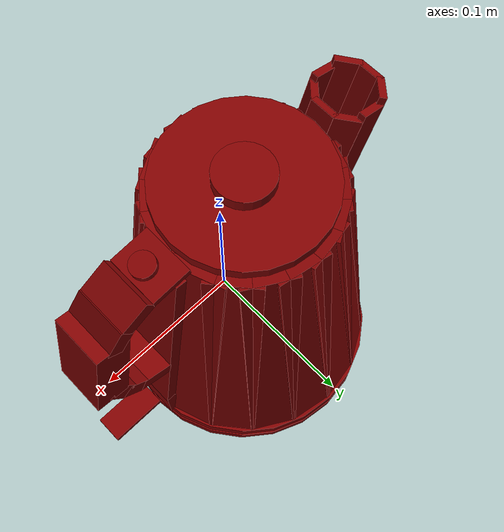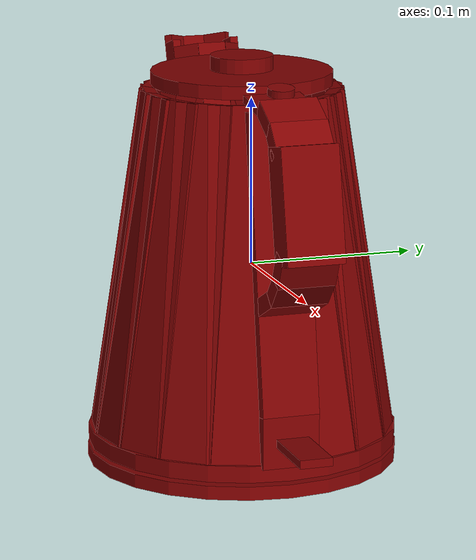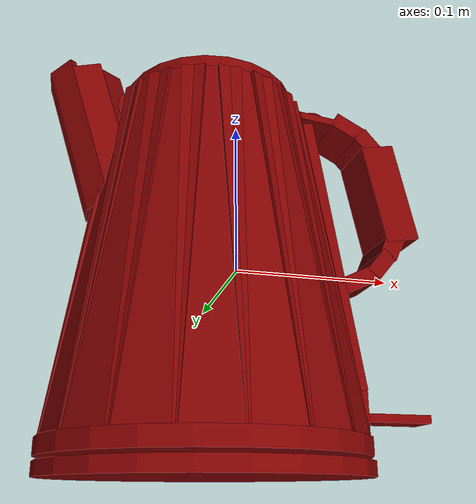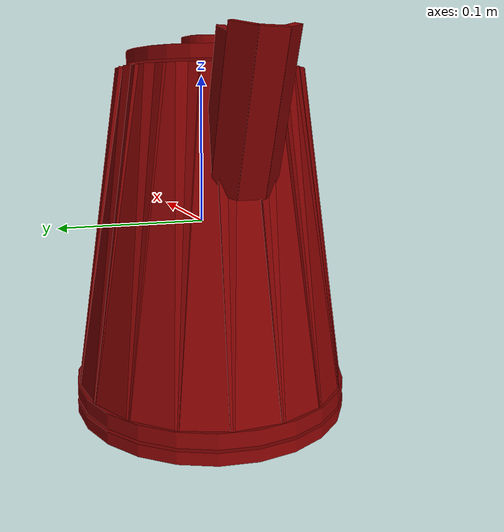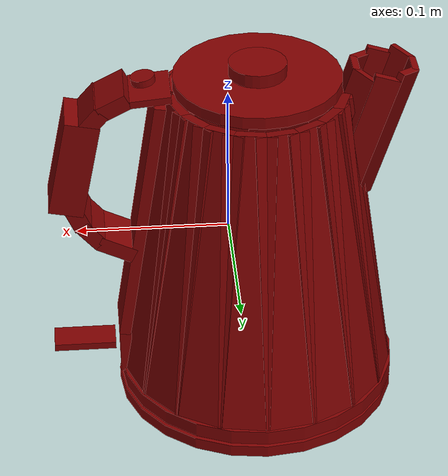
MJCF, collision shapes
<?xml version='1.0' encoding='UTF-8'?>
<mujoco model="model">
  <option timestep="0.002" gravity="0.0 0.0 -9.81"/>
  <compiler angle="radian"/>
  <asset>
    <mesh file="visuals/button_lid.obj" name="button_lid_vis"/>
    <mesh file="visuals/Body001.obj" name="Body001_vis"/>
    <mesh file="visuals/kettle_main.obj" name="kettle_main_vis"/>
    <mesh file="visuals/lid.obj" name="lid_vis"/>
    <mesh file="visuals/switch.obj" name="switch_vis"/>
    <texture file="visuals/T_BC001.png" name="Body001_material" type="2d"/>
    <material name="Body001_material" rgba="1 1 1 1.0" texture="Body001_material" shininess="0.5" specular="0.3103448502657381"/>
    <texture file="visuals/T_BC001.png" name="kettle_main_material" type="2d"/>
    <material name="kettle_main_material" rgba="1 1 1 1.0" texture="kettle_main_material" shininess="0.5" specular="0.3103448502657381"/>
    <texture file="visuals/T_BC001.png" name="button_lid_material" type="2d"/>
    <material name="button_lid_material" rgba="1 1 1 1.0" texture="button_lid_material" shininess="0.5" specular="0.3103448502657381"/>
    <texture file="visuals/T_BC001.png" name="lid_material" type="2d"/>
    <material name="lid_material" rgba="1 1 1 1.0" texture="lid_material" shininess="0.5" specular="0.3103448502657381"/>
    <texture file="visuals/T_BC001.png" name="switch_material" type="2d"/>
    <material name="switch_material" rgba="1 1 1 1.0" texture="switch_material" shininess="0.5" specular="0.3103448502657381"/>
  </asset>
  <default>
    <default class="visual">
      <geom conaffinity="0" contype="0" group="1" type="mesh"/>
    </default>
    <default class="collision">
      <geom group="0" rgba="0.5 0 0 0.5" density="1.0" solref="0.004 1" solimp="0.998 0.998 0.001"/>
    </default>
    <default class="spawn">
      <geom group="0" rgba="1 1 1 0.5" contype="0" conaffinity="0"/>
      <site group="0" rgba="1 1 1 0.5"/>
    </default>
    <default class="region">
      <geom group="1" conaffinity="0" contype="0" rgba="0 1 0 0" mass="0"/>
    </default>
  </default>
  <worldbody>
    <body>
      <body name="object">
        <geom mesh="Body001_vis" type="mesh" solimp="0.998 0.998 0.001" solref="0.001 1" friction="0.95 0.3 0.1" class="visual" material="Body001_material"/>
        <geom type="cylinder" pos="-0.01862647 0.00000000 -0.11908298" size="0.0935683622956276 0.004105851054191589" quat="1.0 0.0 0.0 0.0" class="collision"/>
        <body name="kettle_main">
          <geom mesh="kettle_main_vis" type="mesh" solimp="0.998 0.998 0.001" solref="0.001 1" friction="0.95 0.3 0.1" class="visual" material="kettle_main_material"/>
          <geom type="cylinder" pos="-0.01901763 0.00020971 -0.10780872" size="0.09313647449016571 0.005019483156502247" quat="1.0 0.0 0.0 0.0" class="collision"/>
          <geom type="box" pos="0.05766624 0.00000000 0.01329787" size="0.00381870218552649 0.01719263382256031 0.08845608681440353" quat="0.9970765113830566 5.866154734176035e-16 -0.07640993595123291 -1.0266349548260223e-08" class="collision"/>
          <geom type="box" pos="0.04732430 -0.02415994 -0.00054653" size="0.0038187019526958466 0.01719263195991516 0.10453208535909653" quat="0.9819286465644836 -0.013268446549773216 -0.0752490982413292 -0.1731405258178711" class="collision"/>
          <geom type="box" pos="0.03498848 -0.04538055 -0.00054653" size="0.00381870218552649 0.01719263382256031 0.10453208535909653" quat="0.9369454383850098 -0.026133734732866287 -0.07180185616016388 -0.3410201966762543" class="collision"/>
          <geom type="box" pos="0.01613872 -0.06110230 -0.00054653" size="0.00381870218552649 0.01719263195991516 0.10453208535909653" quat="0.8634935617446899 -0.038204967975616455 -0.06617294996976852 -0.4985382556915283" class="collision"/>
          <geom type="box" pos="-0.00695140 -0.06942891 -0.00054653" size="0.003818702418357134 0.01719263382256031 0.10453209280967712" quat="0.7638048529624939 -0.0491153784096241 -0.05853341519832611 -0.6409084796905518" class="collision"/>
          <geom type="box" pos="-0.03149690 -0.06935610 -0.00054653" size="0.003818702418357134 0.01719263382256031 0.10453208535909653" quat="0.640908420085907 -0.058533407747745514 -0.04911535978317261 -0.7638049125671387" class="collision"/>
          <geom type="box" pos="-0.05453720 -0.06089260 -0.00054653" size="0.00381870218552649 0.01719263382256031 0.10453209280967712" quat="0.4985383152961731 -0.06617295742034912 -0.03820498287677765 -0.8634935021400452" class="collision"/>
          <geom type="box" pos="-0.07329333 -0.04505927 -0.00054653" size="0.00381870218552649 0.01719263382256031 0.10453208535909653" quat="0.34102025628089905 -0.07180184125900269 -0.02613373100757599 -0.9369454383850098" class="collision"/>
          <geom type="box" pos="-0.08550300 -0.02376583 -0.00054653" size="0.0038187019526958466 0.01719263382256031 0.10453208535909653" quat="0.17314055562019348 -0.07524910569190979 -0.01326845120638609 -0.9819286465644836" class="collision"/>
          <geom type="box" pos="-0.08969356 0.00041940 -0.00054653" size="0.00381870218552649 0.01719263382256031 0.10453208535909653" quat="7.533783019653129e-08 -0.07640992105007172 -6.56018883660181e-09 -0.9970765113830566" class="collision"/>
          <geom type="box" pos="-0.08535956 0.02457936 -0.00054653" size="0.0038187019526958466 0.01719263382256031 0.10453209280967712" quat="0.17314055562019348 0.07524911314249039 -0.01326845120638609 0.9819286465644836" class="collision"/>
          <geom type="box" pos="-0.07302374 0.04579996 -0.00054653" size="0.00381870218552649 0.01719263382256031 0.10453208535909653" quat="0.34102025628089905 0.07180183380842209 -0.026133732870221138 0.9369454383850098" class="collision"/>
          <geom type="box" pos="-0.05417398 0.06152171 -0.00054653" size="0.00381870218552649 0.01719263382256031 0.10453209280967712" quat="0.49853822588920593 0.06617295742034912 -0.03820497542619705 0.8634935617446899" class="collision"/>
          <geom type="box" pos="-0.03108386 0.06984833 -0.00054653" size="0.003818702418357134 0.01719263382256031 0.10453208535909653" quat="0.640908420085907 0.058533407747745514 -0.049115363508462906 0.7638049125671387" class="collision"/>
          <geom type="box" pos="-0.00653837 0.06977550 -0.00054653" size="0.003818702418357134 0.01719263382256031 0.10453209280967712" quat="0.7638048529624939 0.0491153821349144 -0.05853341147303581 0.6409084796905518" class="collision"/>
          <geom type="box" pos="0.01650196 0.06131199 -0.00054653" size="0.00381870218552649 0.01719263382256031 0.10453209280967712" quat="0.8634935617446899 0.038204967975616455 -0.06617295742034912 0.49853819608688354" class="collision"/>
          <geom type="box" pos="0.03525806 0.04547868 -0.00054653" size="0.00381870218552649 0.01719263382256031 0.10453209280967712" quat="0.936945378780365 0.026133758947253227 -0.07180187106132507 0.3410203754901886" class="collision"/>
          <geom type="box" pos="0.04746776 0.02418519 -0.00054653" size="0.00381870218552649 0.01719263195991516 0.10453208535909653" quat="0.9819287061691284 0.013268418610095978 -0.07524910569190979 0.17314013838768005" class="collision"/>
          <geom class="collision" type="box" pos="0.09066570 0.00000000 0.00680614" size="0.005115010775625706 0.01719263382256031 0.009505491703748703" quat="0.9384635090827942 -1.0664850384376704e-14 0.34537839889526367 4.6404654341358764e-08" name="handle_5"/>
          <geom class="collision" type="box" pos="0.07322267 -0.00000001 0.10240208" size="0.005360691342502832 0.01719263382256031 0.010286534205079079" quat="0.5189869403839111 -6.6398137700117866e-15 0.8547821640968323 1.1484755901847166e-07" name="handle_2"/>
          <geom class="collision" type="box" pos="0.05002288 -0.00000001 0.10576132" size="0.002399349818006158 0.01719263382256031 0.013163660652935505" quat="0.6722121238708496 1.6551870822296283e-13 0.7403585910797119 9.947365953166809e-08" name="handle_1"/>
          <geom class="collision" type="box" pos="0.09998825 -0.00000000 0.05730611" size="0.011472582817077637 0.01719263382256031 0.03372456133365631" quat="0.09888123720884323 -1.7185922417161173e-14 0.9950992465019226 1.3370031126669346e-07" name="handle_main"/>
          <geom class="collision" type="box" pos="0.08730268 -0.00000001 0.09187084" size="0.005801137536764145 0.01719263382256031 0.009349396452307701" quat="0.34851792454719543 1.3469590983829585e-15 0.9373021125793457 1.259347754967166e-07" name="handle_3"/>
          <geom class="collision" type="box" pos="0.09923773 0.00000000 0.02073185" size="0.00580113660544157 0.01719263382256031 0.009349396452307701" quat="0.2056126892566681 1.8998117220559753e-14 -0.978633463382721 -1.3148799382634024e-07" name="handle_4"/>
          <geom class="collision" type="box" pos="0.07440893 0.00000001 -0.00500371" size="0.005115011241286993 0.01719263382256031 0.012824085541069508" quat="0.8475775122642517 2.2607379242435425e-15 0.5306715965270996 7.130043400138675e-08" name="handle_6"/>
          <geom type="box" pos="-0.10452107 0.00000003 0.07262462" size="0.002419065684080124 0.008524363860487938 0.04671775922179222" quat="0.9886778593063354 9.307586600794805e-16 -0.15005367994308472 -2.0161030178655892e-08" class="collision"/>
          <geom type="box" pos="-0.09939058 0.01297021 0.07421866" size="0.0024190654512494802 0.008524364791810513 0.046717751771211624" quat="0.9134191870689392 0.057423047721385956 -0.13863155245780945 -0.37835079431533813" class="collision"/>
          <geom type="box" pos="-0.08700445 0.01834264 0.07806703" size="0.002419065684080124 0.008524363860487938 0.04168763384222984" quat="0.6991008520126343 0.10610394924879074 -0.10610394924879074 -0.6991007924079895" class="collision"/>
          <geom type="box" pos="-0.07461834 0.01297021 0.08191542" size="0.002419065684080124 0.008524363860487938 0.03735519200563431" quat="0.3783506751060486 0.13863147795200348 -0.05742310360074043 -0.913419246673584" class="collision"/>
          <geom type="box" pos="-0.06948785 0.00000002 0.08350947" size="0.002419065684080124 0.008524363860487938 0.037355199456214905" quat="7.19476034305444e-08 0.15005367994308472 -6.431427390651834e-09 -0.9886778593063354" class="collision"/>
          <geom type="box" pos="-0.07461834 -0.01297017 0.08191542" size="0.0024190659169107676 0.008524363860487938 0.03735519200563431" quat="0.37835076451301575 -0.13863153755664825 -0.05742300674319267 0.9134191870689392" class="collision"/>
          <geom type="box" pos="-0.08700447 -0.01834260 0.07806703" size="0.002419065684080124 0.008524363860487938 0.04168763756752014" quat="0.6991007328033447 -0.10610395669937134 -0.10610400140285492 0.699100911617279" class="collision"/>
          <geom type="box" pos="-0.09939058 -0.01297016 0.07421866" size="0.0024190659169107676 0.008524364791810513 0.046717751771211624" quat="0.9134193658828735 -0.05742308869957924 -0.13863152265548706 0.3783503770828247" class="collision"/>
          <geom type="box" pos="0.07065117 0.00000002 -0.08853853" size="0.0038187019526958466 0.01719263382256031 0.01616472564637661" quat="0.999996542930603 2.3757459402393632e-15 0.002638275269418955 3.544768645280527e-10" class="collision"/>
          <body name="button_lid">
            <joint axis="-0.14314477145671844 -1.3836565226910125e-09 -0.9897016882896423" pos="0.05413771 -0.00011677 0.11362892" limited="true" name="button_lid_joint" range="0.0 0.002" type="slide" damping="1" frictionloss="1" armature=".01" stiffness="0.05" springref="-1"/>
            <geom mesh="button_lid_vis" type="mesh" solimp="0.998 0.998 0.001" solref="0.001 1" friction="0.95 0.3 0.1" class="visual" material="button_lid_material"/>
            <geom class="collision" type="cylinder" pos="0.05409761 0.00000000 0.11375798" size="0.007815146818757057 0.002271299483254552" quat="0.9974249601364136 -1.1483205548894052e-15 0.07171820849180222 9.635978237554355e-09" name="button_lid_main"/>
          </body>
          <body name="lid">
            <joint axis="0.0 1.0 0.0" pos="0.03457557 -0.00000409 0.11410271" limited="true" name="lid_joint" range="0.0 1.5707963267948966" type="hinge" damping="1" frictionloss="0.1" armature=".01" stiffness="0.05" springref="-6"/>
            <geom mesh="lid_vis" type="mesh" solimp="0.998 0.998 0.001" solref="0.001 1" friction="0.95 0.3 0.1" class="visual" material="lid_material"/>
            <geom class="collision" type="cylinder" pos="-0.01862647 0.00000000 0.10963399" size="0.05424598604440689 0.003984849900007248" quat="1.0 0.0 0.0 0.0" name="lid_main"/>
            <geom class="collision" type="cylinder" pos="-0.01862647 0.00000000 0.11836588" size="0.01871533691883087 0.004324984271079302" quat="1.0 0.0 0.0 0.0" name="lid_1"/>
          </body>
          <body name="switch">
            <joint axis="0.0 0.0 -1.0" pos="0.08619894 -0.00011674 -0.08868788" limited="true" name="switch_joint" range="0.0 0.005" type="slide" damping="1" frictionloss="1" armature=".01" stiffness="0.01" springref="-1"/>
            <geom mesh="switch_vis" type="mesh" solimp="0.998 0.998 0.001" solref="0.001 1" friction="0.95 0.3 0.1" class="visual" material="switch_material"/>
            <geom class="collision" type="box" pos="0.09805199 0.00000001 -0.08845632" size="0.020776962861418724 0.009862693026661873 0.0025095660239458084" quat="1.0 0.0 0.0 0.0" name="switch_main"/>
          </body>
        </body>
        <geom class="region" name="reg_main" type="box" pos="-0.004050999999999999 -1.0000000001675335e-08 0.0" size="0.11649825 0.09209737000000001 0.12377218"/>
      </body>
    </body>
  </worldbody>
  <actuator>
    <motor name="button_lid_joint_actuator" joint="button_lid_joint" gear="0.5"/>
    <motor name="lid_joint_actuator" joint="lid_joint" gear="0.5"/>
    <motor name="switch_joint_actuator" joint="switch_joint" gear="0.5"/>
  </actuator>
</mujoco>
